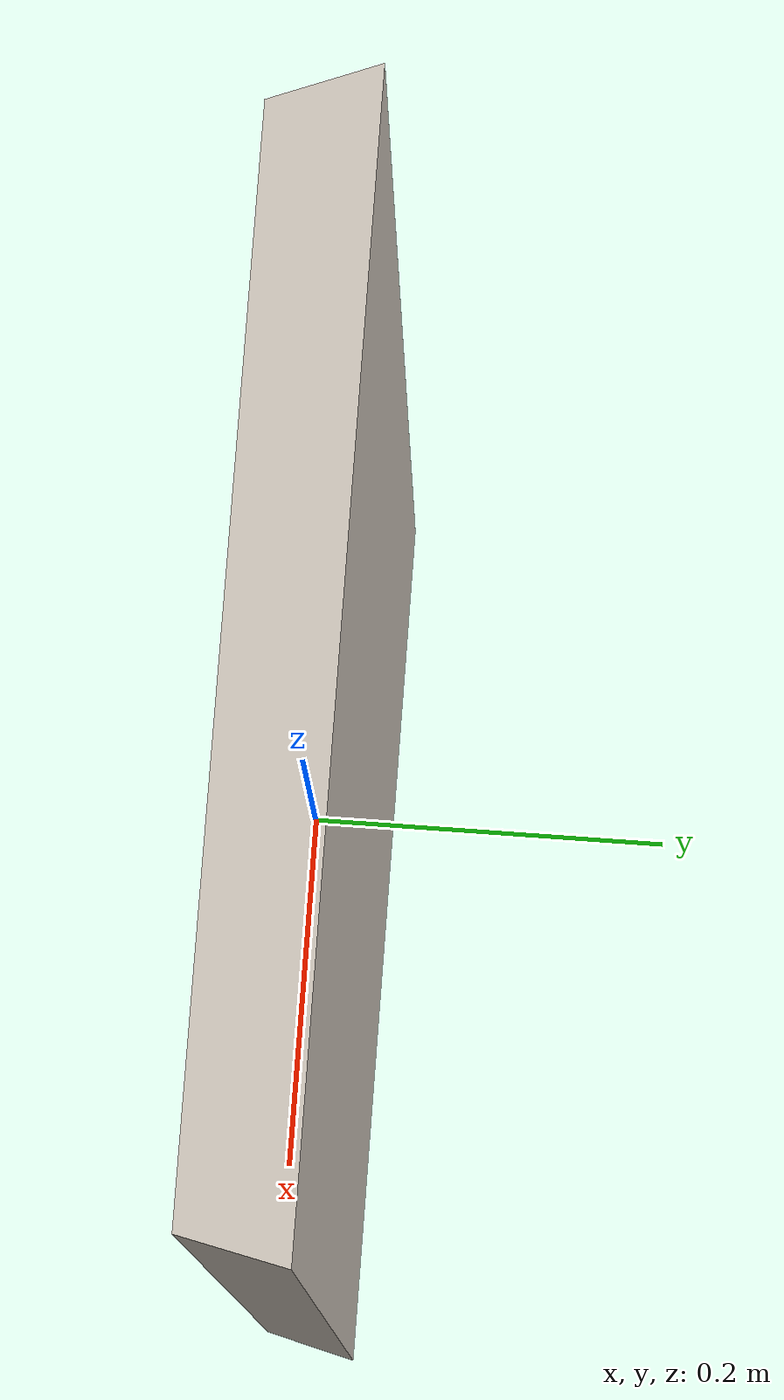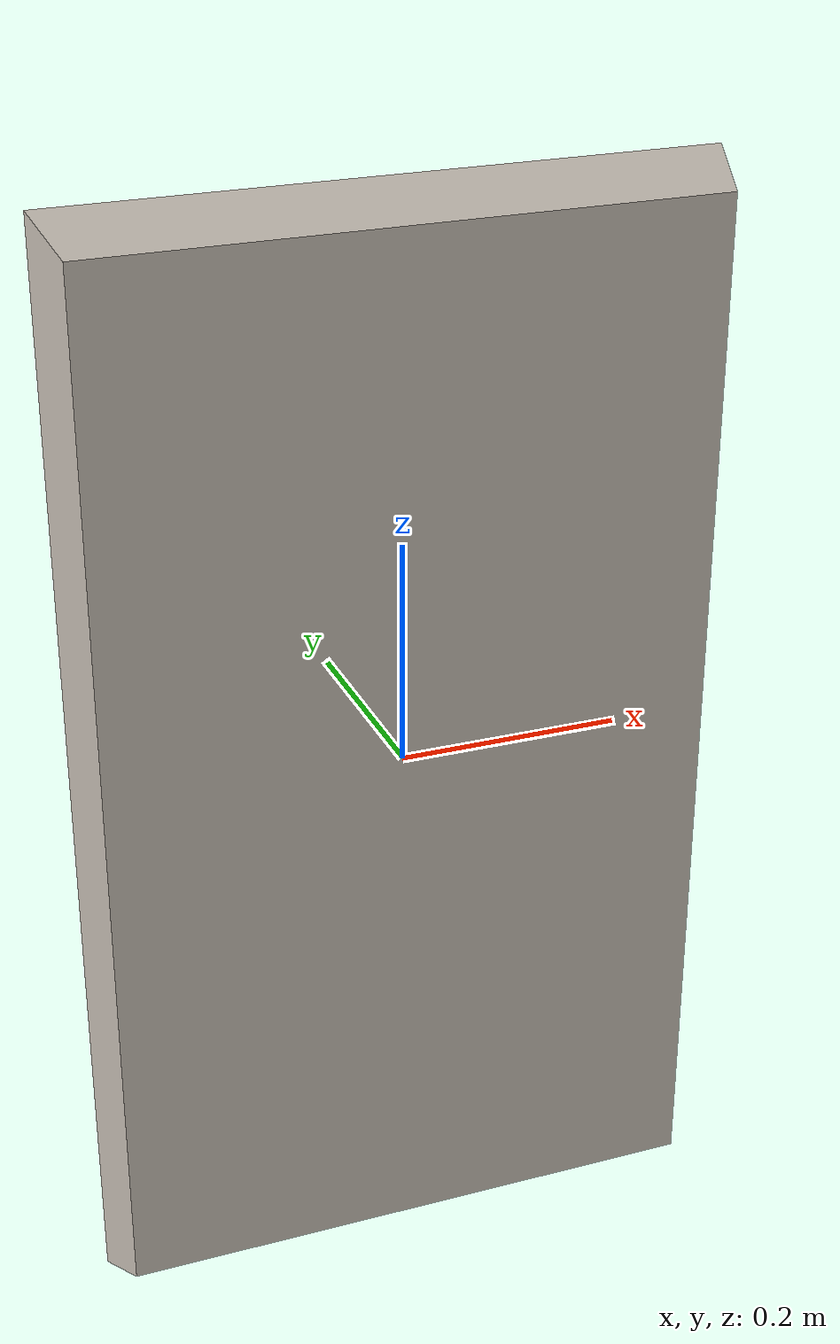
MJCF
<mujoco model="outlet">
  <compiler angle="radian"/>
  <asset>
    <texture file="visuals/material_0.png" name="tex-outlet" type="2d"/>
    <texture type="2d" name="image0" file="visuals/image0.png"/>
    <material name="outlet" reflectance="0.5" texrepeat="1 1" texture="tex-outlet" texuniform="false"/>
    <mesh file="visuals/outlet_0.obj" name="outlet_0_vis" scale="1 1 1"/>
  </asset>
  <default>
    <default class="visual">
      <geom conaffinity="0" contype="0" group="1" type="mesh"/>
    </default>
    <default class="collision">
      <geom group="0" rgba="0.5 0 0 0.5"/>
    </default>
  </default>
  <worldbody>
    <body>
      <!-- exterior bounding box points -->
      <site rgba="1 1 1 1" size="0.01" pos="0 0 0" name="ext_p0"/>
      <site rgba="1 0 0 1" size="0.01" pos="0 0 0" name="ext_px"/>
      <site rgba="0 1 0 1" size="0.01" pos="0 0 0" name="ext_py"/>
      <site rgba="0 0 1 1" size="0.01" pos="0 0 0" name="ext_pz"/>
      <!-- interior bounding box points -->
      <site rgba="1 1 1 1" size="0.01" pos="0 0 0" name="int_p0"/>
      <site rgba="1 1 0 1" size="0.01" pos="0 0 0" name="int_px"/>
      <site rgba="0 1 1 1" size="0.01" pos="0 0 0" name="int_py"/>
      <site rgba="1 0 1 1" size="0.01" pos="0 0 0" name="int_pz"/>
      <body name="object">
        <geom solimp="0.998 0.998 0.001" solref="0.001 1" density="100" friction="0.95 0.3 0.1" type="mesh" mesh="outlet_0_vis" material="outlet" class="visual"/>
      </body>
    </body>
  </worldbody>
</mujoco>
